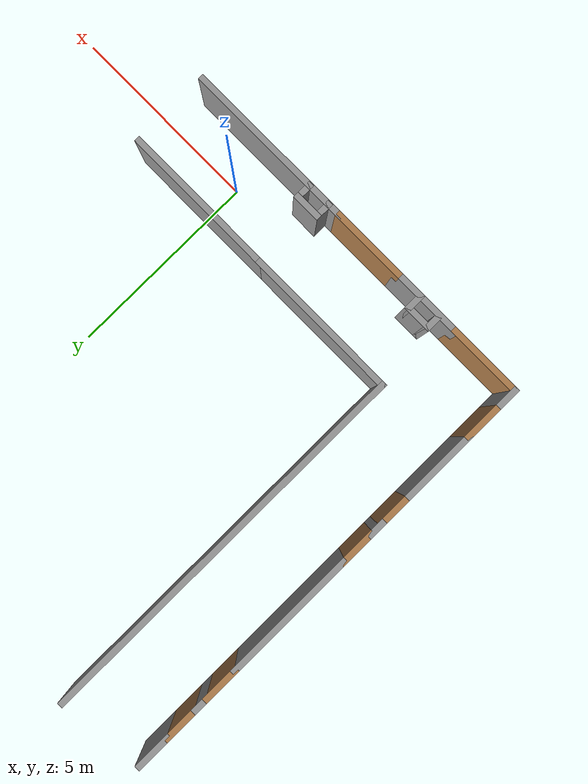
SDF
<?xml version='1.0'?>
<sdf version='1.6'>
  <model name='turtlebot_model_6'>
    <pose frame=''>-2.925 4.925 0 0 -0 0</pose>
    <link name='Wall_0'>
      <collision name='Wall_0_Collision'>
        <geometry>
          <box>
            <size>4 0.15 2</size>
          </box>
        </geometry>
        <pose frame=''>0 0 1 0 -0 0</pose>
      </collision>
      <visual name='Wall_0_Visual'>
        <pose frame=''>0 0 1 0 -0 0</pose>
        <geometry>
          <box>
            <size>4 0.15 2</size>
          </box>
        </geometry>
        <material>
          <script>
            <uri>file://media/materials/scripts/gazebo.material</uri>
            <name>Gazebo/Grey</name>
          </script>
          <ambient>1 1 1 1</ambient>
        </material>
        <meta>
          <layer>0</layer>
        </meta>
      </visual>
      <pose frame=''>3 -3.925 0 0 -0 3.14159</pose>
    </link>
    <link name='Wall_100'>
      <collision name='Wall_100_Collision'>
        <geometry>
          <box>
            <size>0.75 0.15 2</size>
          </box>
        </geometry>
        <pose frame=''>0 0 1 0 -0 0</pose>
      </collision>
      <visual name='Wall_100_Visual'>
        <pose frame=''>0 0 1 0 -0 0</pose>
        <geometry>
          <box>
            <size>0.75 0.15 2</size>
          </box>
        </geometry>
        <material>
          <script>
            <uri>file://media/materials/scripts/gazebo.material</uri>
            <name>Gazebo/Grey</name>
          </script>
          <ambient>1 1 1 1</ambient>
        </material>
        <meta>
          <layer>0</layer>
        </meta>
      </visual>
      <pose frame=''>-2.275 -5.561 0 0 -0 0</pose>
    </link>
    <link name='Wall_101'>
      <collision name='Wall_101_Collision'>
        <geometry>
          <box>
            <size>0.5 0.15 2</size>
          </box>
        </geometry>
        <pose frame=''>0 0 1 0 -0 0</pose>
      </collision>
      <visual name='Wall_101_Visual'>
        <pose frame=''>0 0 1 0 -0 0</pose>
        <geometry>
          <box>
            <size>0.5 0.15 2</size>
          </box>
        </geometry>
        <material>
          <script>
            <uri>file://media/materials/scripts/gazebo.material</uri>
            <name>Gazebo/Grey</name>
          </script>
          <ambient>1 1 1 1</ambient>
        </material>
        <meta>
          <layer>0</layer>
        </meta>
      </visual>
      <pose frame=''>-1.975 -5.736 0 0 0 -1.5708</pose>
    </link>
    <link name='Wall_20'>
      <collision name='Wall_20_Collision'>
        <geometry>
          <box>
            <size>4 0.15 2</size>
          </box>
        </geometry>
        <pose frame=''>0 0 1 0 -0 0</pose>
      </collision>
      <visual name='Wall_20_Visual'>
        <pose frame=''>0 0 1 0 -0 0</pose>
        <geometry>
          <box>
            <size>4 0.15 2</size>
          </box>
        </geometry>
        <material>
          <script>
            <uri>file://media/materials/scripts/gazebo.material</uri>
            <name>Gazebo/Grey</name>
          </script>
          <ambient>1 1 1 1</ambient>
        </material>
        <meta>
          <layer>0</layer>
        </meta>
      </visual>
      <pose frame=''>-0.85 -3.925 0 0 -0 3.14159</pose>
    </link>
    <link name='Wall_41'>
      <collision name='Wall_41_Collision'>
        <geometry>
          <box>
            <size>0.75 0.15 2</size>
          </box>
        </geometry>
        <pose frame=''>0 0 1 0 -0 0</pose>
      </collision>
      <visual name='Wall_41_Visual'>
        <pose frame=''>0 0 1 0 -0 0</pose>
        <geometry>
          <box>
            <size>0.75 0.15 2</size>
          </box>
        </geometry>
        <material>
          <script>
            <uri>file://media/materials/scripts/gazebo.material</uri>
            <name>Gazebo/Grey</name>
          </script>
          <ambient>1 1 1 1</ambient>
        </material>
        <meta>
          <layer>0</layer>
        </meta>
      </visual>
      <pose frame=''>-4.925 -5.625 0 0 -0 1.5708</pose>
    </link>
    <link name='Wall_45'>
      <collision name='Wall_45_Collision'>
        <geometry>
          <box>
            <size>10 0.15 2</size>
          </box>
        </geometry>
        <pose frame=''>0 0 1 0 -0 0</pose>
      </collision>
      <visual name='Wall_45_Visual'>
        <pose frame=''>0 0 1 0 -0 0</pose>
        <geometry>
          <box>
            <size>10 0.15 2</size>
          </box>
        </geometry>
        <material>
          <script>
            <uri>file://media/materials/scripts/gazebo.material</uri>
            <name>Gazebo/Grey</name>
          </script>
          <ambient>1 1 1 1</ambient>
        </material>
        <meta>
          <layer>0</layer>
        </meta>
      </visual>
      <pose frame=''>-2.775 1 0 0 -0 1.5708</pose>
    </link>
    <link name='Wall_50'>
      <collision name='Wall_50_Collision'>
        <geometry>
          <box>
            <size>1 0.15 2</size>
          </box>
        </geometry>
        <pose frame=''>0 0 1 0 -0 0</pose>
      </collision>
      <visual name='Wall_50_Visual'>
        <pose frame=''>0 0 1 0 -0 0</pose>
        <geometry>
          <box>
            <size>1 0.15 2</size>
          </box>
        </geometry>
        <material>
          <script>
            <uri>file://media/materials/scripts/gazebo.material</uri>
            <name>Gazebo/Wood</name>
          </script>
          <ambient>1 1 1 1</ambient>
        </material>
        <meta>
          <layer>0</layer>
        </meta>
      </visual>
      <pose frame=''>-4.925 -1 0 0 -0 1.5708</pose>
    </link>
    <link name='Wall_51'>
      <collision name='Wall_51_Collision'>
        <geometry>
          <box>
            <size>3.5 0.15 2</size>
          </box>
        </geometry>
        <pose frame=''>0 0 1 0 -0 0</pose>
      </collision>
      <visual name='Wall_51_Visual'>
        <pose frame=''>0 0 1 0 -0 0</pose>
        <geometry>
          <box>
            <size>3.5 0.15 2</size>
          </box>
        </geometry>
        <material>
          <script>
            <uri>file://media/materials/scripts/gazebo.material</uri>
            <name>Gazebo/Grey</name>
          </script>
          <ambient>1 1 1 1</ambient>
        </material>
        <meta>
          <layer>0</layer>
        </meta>
      </visual>
      <pose frame=''>-4.925 1.1 0 0 -0 1.5708</pose>
    </link>
    <link name='Wall_58'>
      <collision name='Wall_58_Collision'>
        <geometry>
          <box>
            <size>1 0.15 2</size>
          </box>
        </geometry>
        <pose frame=''>0 0 1 0 -0 0</pose>
      </collision>
      <visual name='Wall_58_Visual'>
        <pose frame=''>0 0 1 0 -0 0</pose>
        <geometry>
          <box>
            <size>1 0.15 2</size>
          </box>
        </geometry>
        <material>
          <script>
            <uri>file://media/materials/scripts/gazebo.material</uri>
            <name>Gazebo/Wood</name>
          </script>
          <ambient>1 1 1 1</ambient>
        </material>
        <meta>
          <layer>0</layer>
        </meta>
      </visual>
      <pose frame=''>-4.925 3.2 0 0 -0 1.5708</pose>
    </link>
    <link name='Wall_59'>
      <collision name='Wall_59_Collision'>
        <geometry>
          <box>
            <size>0.5 0.15 2</size>
          </box>
        </geometry>
        <pose frame=''>0 0 1 0 -0 0</pose>
      </collision>
      <visual name='Wall_59_Visual'>
        <pose frame=''>0 0 1 0 -0 0</pose>
        <geometry>
          <box>
            <size>0.5 0.15 2</size>
          </box>
        </geometry>
        <material>
          <script>
            <uri>file://media/materials/scripts/gazebo.material</uri>
            <name>Gazebo/Grey</name>
          </script>
          <ambient>1 1 1 1</ambient>
        </material>
        <meta>
          <layer>0</layer>
        </meta>
      </visual>
      <pose frame=''>-4.925 3.8 0 0 -0 1.5708</pose>
    </link>
    <link name='Wall_60'>
      <collision name='Wall_60_Collision'>
        <geometry>
          <box>
            <size>1 0.15 2</size>
          </box>
        </geometry>
        <pose frame=''>0 0 1 0 -0 0</pose>
      </collision>
      <visual name='Wall_60_Visual'>
        <pose frame=''>0 0 1 0 -0 0</pose>
        <geometry>
          <box>
            <size>1 0.15 2</size>
          </box>
        </geometry>
        <material>
          <script>
            <uri>file://media/materials/scripts/gazebo.material</uri>
            <name>Gazebo/Wood</name>
          </script>
          <ambient>1 1 1 1</ambient>
        </material>
        <meta>
          <layer>0</layer>
        </meta>
      </visual>
      <pose frame=''>-4.925 4.4 0 0 -0 1.5708</pose>
    </link>
    <link name='Wall_61'>
      <collision name='Wall_61_Collision'>
        <geometry>
          <box>
            <size>1 0.15 2</size>
          </box>
        </geometry>
        <pose frame=''>0 0 1 0 -0 0</pose>
      </collision>
      <visual name='Wall_61_Visual'>
        <pose frame=''>0 0 1 0 -0 0</pose>
        <geometry>
          <box>
            <size>1 0.15 2</size>
          </box>
        </geometry>
        <material>
          <script>
            <uri>file://media/materials/scripts/gazebo.material</uri>
            <name>Gazebo/Grey</name>
          </script>
          <ambient>1 1 1 1</ambient>
        </material>
        <meta>
          <layer>0</layer>
        </meta>
      </visual>
      <pose frame=''>-4.925 5.25 0 0 -0 1.5708</pose>
    </link>
    <link name='Wall_68'>
      <collision name='Wall_68_Collision'>
        <geometry>
          <box>
            <size>1 0.15 2</size>
          </box>
        </geometry>
        <pose frame=''>0 0 1 0 -0 0</pose>
      </collision>
      <visual name='Wall_68_Visual'>
        <pose frame=''>0 0 1 0 -0 0</pose>
        <geometry>
          <box>
            <size>1 0.15 2</size>
          </box>
        </geometry>
        <material>
          <script>
            <uri>file://media/materials/scripts/gazebo.material</uri>
            <name>Gazebo/Wood</name>
          </script>
          <ambient>1 1 1 1</ambient>
        </material>
        <meta>
          <layer>0</layer>
        </meta>
      </visual>
      <pose frame=''>-4.925 -4.9 0 0 -0 1.5708</pose>
    </link>
    <link name='Wall_72'>
      <collision name='Wall_72_Collision'>
        <geometry>
          <box>
            <size>2 0.15 2</size>
          </box>
        </geometry>
        <pose frame=''>0 0 1 0 -0 0</pose>
      </collision>
      <visual name='Wall_72_Visual'>
        <pose frame=''>0 0 1 0 -0 0</pose>
        <geometry>
          <box>
            <size>2 0.15 2</size>
          </box>
        </geometry>
        <material>
          <script>
            <uri>file://media/materials/scripts/gazebo.material</uri>
            <name>Gazebo/Grey</name>
          </script>
          <ambient>1 1 1 1</ambient>
        </material>
        <meta>
          <layer>0</layer>
        </meta>
      </visual>
      <pose frame=''>-4.925 -3.55 0 0 0 -1.5708</pose>
    </link>
    <link name='Wall_74'>
      <collision name='Wall_74_Collision'>
        <geometry>
          <box>
            <size>2 0.15 2</size>
          </box>
        </geometry>
        <pose frame=''>0 0 1 0 -0 0</pose>
      </collision>
      <visual name='Wall_74_Visual'>
        <pose frame=''>0 0 1 0 -0 0</pose>
        <geometry>
          <box>
            <size>2 0.15 2</size>
          </box>
        </geometry>
        <material>
          <script>
            <uri>file://media/materials/scripts/gazebo.material</uri>
            <name>Gazebo/Wood</name>
          </script>
          <ambient>1 1 1 1</ambient>
        </material>
        <meta>
          <layer>0</layer>
        </meta>
      </visual>
      <pose frame=''>-4 -5.925 0 0 -0 0</pose>
    </link>
    <link name='Wall_75'>
      <collision name='Wall_75_Collision'>
        <geometry>
          <box>
            <size>1.95 0.15 2</size>
          </box>
        </geometry>
        <pose frame=''>0 0 1 0 -0 0</pose>
      </collision>
      <visual name='Wall_75_Visual'>
        <pose frame=''>0 0 1 0 -0 0</pose>
        <geometry>
          <box>
            <size>1.95 0.15 2</size>
          </box>
        </geometry>
        <material>
          <script>
            <uri>file://media/materials/scripts/gazebo.material</uri>
            <name>Gazebo/Grey</name>
          </script>
          <ambient>1 1 1 1</ambient>
        </material>
        <meta>
          <layer>0</layer>
        </meta>
      </visual>
      <pose frame=''>-2.175 -5.925 0 0 -0 0</pose>
    </link>
    <link name='Wall_78'>
      <collision name='Wall_78_Collision'>
        <geometry>
          <box>
            <size>0.5 0.15 2</size>
          </box>
        </geometry>
        <pose frame=''>0 0 1 0 -0 0</pose>
      </collision>
      <visual name='Wall_78_Visual'>
        <pose frame=''>0 0 1 0 -0 0</pose>
        <geometry>
          <box>
            <size>0.5 0.15 2</size>
          </box>
        </geometry>
        <material>
          <script>
            <uri>file://media/materials/scripts/gazebo.material</uri>
            <name>Gazebo/Grey</name>
          </script>
          <ambient>1 1 1 1</ambient>
        </material>
        <meta>
          <layer>0</layer>
        </meta>
      </visual>
      <pose frame=''>-4.925 -1.6 0 0 0 -1.5708</pose>
    </link>
    <link name='Wall_79'>
      <collision name='Wall_79_Collision'>
        <geometry>
          <box>
            <size>1 0.15 2</size>
          </box>
        </geometry>
        <pose frame=''>0 0 1 0 -0 0</pose>
      </collision>
      <visual name='Wall_79_Visual'>
        <pose frame=''>0 0 1 0 -0 0</pose>
        <geometry>
          <box>
            <size>1 0.15 2</size>
          </box>
        </geometry>
        <material>
          <script>
            <uri>file://media/materials/scripts/gazebo.material</uri>
            <name>Gazebo/Wood</name>
          </script>
          <ambient>1 1 1 1</ambient>
        </material>
        <meta>
          <layer>0</layer>
        </meta>
      </visual>
      <pose frame=''>-4.925 -2.2 0 0 0 -1.5708</pose>
    </link>
    <link name='Wall_87'>
      <collision name='Wall_87_Collision'>
        <geometry>
          <box>
            <size>2 0.15 2</size>
          </box>
        </geometry>
        <pose frame=''>0 0 1 0 -0 0</pose>
      </collision>
      <visual name='Wall_87_Visual'>
        <pose frame=''>0 0 1 0 -0 0</pose>
        <geometry>
          <box>
            <size>2 0.15 2</size>
          </box>
        </geometry>
        <material>
          <script>
            <uri>file://media/materials/scripts/gazebo.material</uri>
            <name>Gazebo/Wood</name>
          </script>
          <ambient>1 1 1 1</ambient>
        </material>
        <meta>
          <layer>0</layer>
        </meta>
      </visual>
      <pose frame=''>-0.35 -5.925 0 0 -0 0</pose>
    </link>
    <link name='Wall_88'>
      <collision name='Wall_88_Collision'>
        <geometry>
          <box>
            <size>4.5 0.15 2</size>
          </box>
        </geometry>
        <pose frame=''>0 0 1 0 -0 0</pose>
      </collision>
      <visual name='Wall_88_Visual'>
        <pose frame=''>0 0 1 0 -0 0</pose>
        <geometry>
          <box>
            <size>4.5 0.15 2</size>
          </box>
        </geometry>
        <material>
          <script>
            <uri>file://media/materials/scripts/gazebo.material</uri>
            <name>Gazebo/Grey</name>
          </script>
          <ambient>1 1 1 1</ambient>
        </material>
        <meta>
          <layer>0</layer>
        </meta>
      </visual>
      <pose frame=''>2.75 -5.925 0 0 -0 0</pose>
    </link>
    <link name='Wall_90'>
      <collision name='Wall_90_Collision'>
        <geometry>
          <box>
            <size>0.5 0.15 2</size>
          </box>
        </geometry>
        <pose frame=''>0 0 1 0 -0 0</pose>
      </collision>
      <visual name='Wall_90_Visual'>
        <pose frame=''>0 0 1 0 -0 0</pose>
        <geometry>
          <box>
            <size>0.5 0.15 2</size>
          </box>
        </geometry>
        <material>
          <script>
            <uri>file://media/materials/scripts/gazebo.material</uri>
            <name>Gazebo/Grey</name>
          </script>
          <ambient>1 1 1 1</ambient>
        </material>
        <meta>
          <layer>0</layer>
        </meta>
      </visual>
      <pose frame=''>0.925 -5.736 0 0 -0 1.5708</pose>
    </link>
    <link name='Wall_92'>
      <collision name='Wall_92_Collision'>
        <geometry>
          <box>
            <size>0.75 0.15 2</size>
          </box>
        </geometry>
        <pose frame=''>0 0 1 0 -0 0</pose>
      </collision>
      <visual name='Wall_92_Visual'>
        <pose frame=''>0 0 1 0 -0 0</pose>
        <geometry>
          <box>
            <size>0.75 0.15 2</size>
          </box>
        </geometry>
        <material>
          <script>
            <uri>file://media/materials/scripts/gazebo.material</uri>
            <name>Gazebo/Grey</name>
          </script>
          <ambient>1 1 1 1</ambient>
        </material>
        <meta>
          <layer>0</layer>
        </meta>
      </visual>
      <pose frame=''>1.225 -5.561 0 0 -0 0</pose>
    </link>
    <link name='Wall_96'>
      <collision name='Wall_96_Collision'>
        <geometry>
          <box>
            <size>0.5 0.15 2</size>
          </box>
        </geometry>
        <pose frame=''>0 0 1 0 -0 0</pose>
      </collision>
      <visual name='Wall_96_Visual'>
        <pose frame=''>0 0 1 0 -0 0</pose>
        <geometry>
          <box>
            <size>0.5 0.15 2</size>
          </box>
        </geometry>
        <material>
          <script>
            <uri>file://media/materials/scripts/gazebo.material</uri>
            <name>Gazebo/Grey</name>
          </script>
          <ambient>1 1 1 1</ambient>
        </material>
        <meta>
          <layer>0</layer>
        </meta>
      </visual>
      <pose frame=''>1.525 -5.736 0 0 0 -1.5708</pose>
    </link>
    <link name='Wall_98'>
      <collision name='Wall_98_Collision'>
        <geometry>
          <box>
            <size>0.5 0.15 2</size>
          </box>
        </geometry>
        <pose frame=''>0 0 1 0 -0 0</pose>
      </collision>
      <visual name='Wall_98_Visual'>
        <pose frame=''>0 0 1 0 -0 0</pose>
        <geometry>
          <box>
            <size>0.5 0.15 2</size>
          </box>
        </geometry>
        <material>
          <script>
            <uri>file://media/materials/scripts/gazebo.material</uri>
            <name>Gazebo/Grey</name>
          </script>
          <ambient>1 1 1 1</ambient>
        </material>
        <meta>
          <layer>0</layer>
        </meta>
      </visual>
      <pose frame=''>-2.575 -5.736 0 0 -0 1.5708</pose>
    </link>
    <static>1</static>
  </model>
</sdf>
